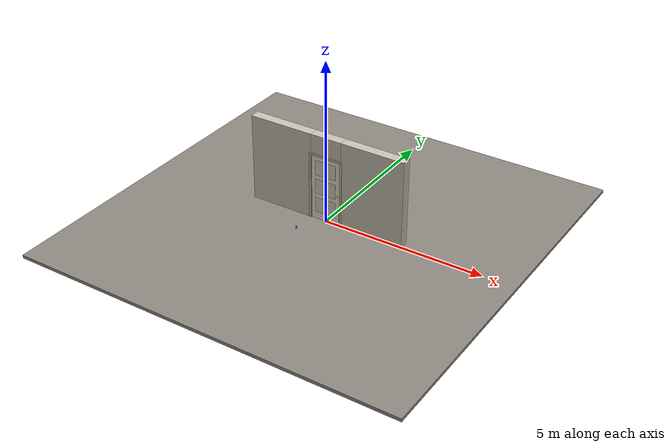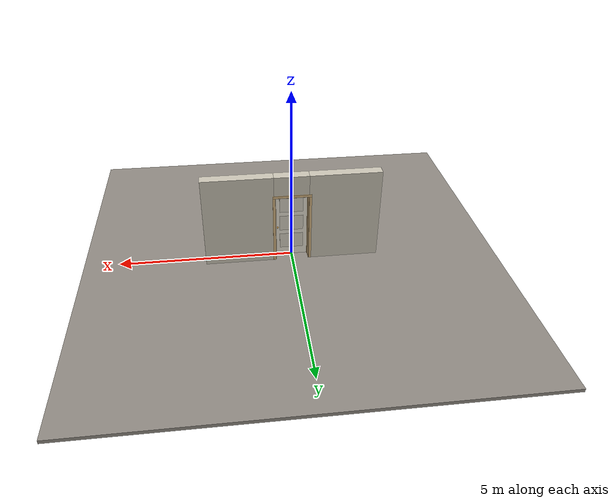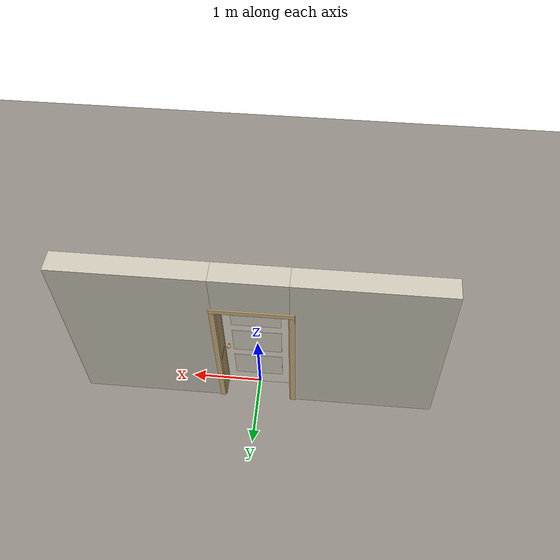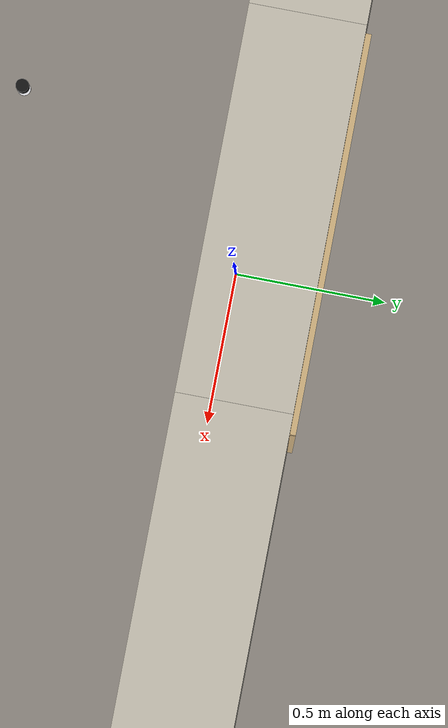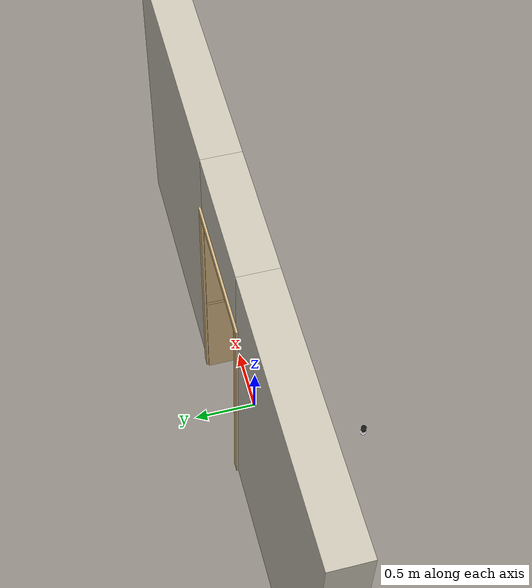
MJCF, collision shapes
<?xml version="1.0" ?>
<mujoco model="db0616_swing_single_full">
  <compiler angle="radian" meshdir="../../hardware" texturedir="../../textures" autolimits="true" inertiafromgeom="false"/>
  <option timestep="0.002" integrator="implicitfast" cone="elliptic" impratio="10" noslip_iterations="3">
    <flag multiccd="enable"/>
  </option>
  <size memory="16M"/>
  <default>
    <geom condim="4" solref="0.005 1" solimp="0.95 0.99 0.001"/>
    <joint solreflimit="0.005 1" solimplimit="0.95 0.99 0.001"/>
    <tendon solreflimit="0.005 1"/>
    <equality solref="0.002 1"/>
  </default>
  <visual>
    <headlight ambient="0.4 0.4 0.4" diffuse="0.7 0.7 0.7" specular="0.2 0.2 0.2"/>
    <quality shadowsize="4096"/>
    <map znear="0.01" zfar="60"/>
  </visual>
  <asset>
    <mesh name="coat_hook_d622d37ad0" file="coat_hook_d622d37ad0.obj"/>
    <mesh name="hinge_96510cf394" file="hinge_96510cf394.obj"/>
    <mesh name="hinge_jamb_7fd4ca52b2" file="hinge_jamb_7fd4ca52b2.obj"/>
    <mesh name="knob_d1888f6f03" file="knob_d1888f6f03.obj"/>
    <material name="mat_floor" rgba="0.55 0.53 0.5 1" specular="0.2" shininess="0.15" reflectance="0"/>
    <material name="mat_wall" rgba="0.78 0.76 0.7 1" specular="0.2" shininess="0.1" reflectance="0"/>
    <material name="mat_leaf" rgba="0.9 0.88 0.82 1" specular="0.2" shininess="0.4" reflectance="0"/>
    <material name="mat_leaf_panel" rgba="0.828 0.81 0.754 1" specular="0.2" shininess="0.4" reflectance="0"/>
    <material name="mat_hinge" rgba="0.65 0.66 0.68 1" specular="0.74" shininess="0.5" reflectance="0.36"/>
    <material name="mat_op_brass" rgba="0.85 0.66 0.3 1" specular="0.8" shininess="0.75" reflectance="0.4"/>
    <material name="mat_trim" rgba="0.85 0.66 0.3 1" specular="0.8" shininess="0.75" reflectance="0.4"/>
    <material name="mat_bolt" rgba="0.85 0.66 0.3 1" specular="0.8" shininess="0.75" reflectance="0.4"/>
    <material name="mat_frame" rgba="0.82 0.7 0.5 1" specular="0.2" shininess="0.45" reflectance="0"/>
    <material name="mat_hook" rgba="0.9 0.9 0.92 1" specular="0.8" shininess="0.9" reflectance="0.4"/>
    <material name="mat_bumper_stop" rgba="0.08 0.08 0.08 1" specular="0.2" shininess="0.1" reflectance="0"/>
    <material name="mat_stop_base" rgba="0.9 0.9 0.92 1" specular="0.8" shininess="0.9" reflectance="0.4"/>
    <texture name="skybox" type="skybox" builtin="gradient" rgb1="0.6 0.7 0.85" rgb2="0.9 0.92 0.95" width="256" height="256"/>
  </asset>
  <worldbody>
    <light name="sun" pos="1.5 -2.5 4" dir="-0.3 0.5 -0.8" directional="true" diffuse="0.8 0.8 0.8" specular="0.3 0.3 0.3" castshadow="true"/>
    <light name="fill" pos="-1.5 2.5 3" dir="0.3 -0.5 -0.7" directional="true" diffuse="0.35 0.35 0.4" castshadow="false"/>
    <camera name="robot_view" pos="0 -2.416687 1.734312" xyaxes="1 0 0 0 0.26963 0.962964" fovy="52"/>
    <camera name="far_view" pos="0 2.667687 1.734312" xyaxes="-1 0 0 0 -0.26963 0.962964" fovy="52"/>
    <camera name="iso" pos="1.932062 -2.009937 2.141063" xyaxes="0.741536 0.670913 0 -0.242917 0.268487 0.932151" fovy="46"/>
    <camera name="detail_handle" pos="0.5765 -0.864 1.245" xyaxes="0.97561 0.219512 0 -0.070934 0.315262 0.94635" fovy="38"/>
    <geom name="floor" type="box" size="6 6 0.05" pos="0 0 -0.05" material="mat_floor" group="0" contype="1" conaffinity="1" friction="0.8 0.005 0.0001" density="2400"/>
    <geom name="wall_left" type="box" size="1.01025 0.15 1.35" pos="-1.48975 0.1255 1.35" material="mat_wall" group="0" contype="1" conaffinity="1" friction="0.6 0.005 0.0001" density="800"/>
    <geom name="wall_right" type="box" size="0.99525 0.15 1.35" pos="1.50475 0.1255 1.35" material="mat_wall" group="0" contype="1" conaffinity="1" friction="0.6 0.005 0.0001" density="800"/>
    <geom name="wall_header" type="box" size="0.4945 0.15 0.303" pos="0.015 0.1255 2.397" material="mat_wall" group="0" contype="1" conaffinity="1" friction="0.6 0.005 0.0001" density="800"/>
    <geom name="hinge_0_jamb" type="mesh" mesh="hinge_jamb_7fd4ca52b2" pos="-0.4575 -0.0245 0.259" material="mat_hinge" group="1" contype="0" conaffinity="0" density="7850"/>
    <geom name="hinge_1_jamb" type="mesh" mesh="hinge_jamb_7fd4ca52b2" pos="-0.4575 -0.0245 1.025" material="mat_hinge" group="1" contype="0" conaffinity="0" density="7850"/>
    <geom name="hinge_2_jamb" type="mesh" mesh="hinge_jamb_7fd4ca52b2" pos="-0.4575 -0.0245 1.861" material="mat_hinge" group="1" contype="0" conaffinity="0" density="7850"/>
    <geom name="jamb_hinge" type="box" size="0.0095 0.15 1.0225" pos="-0.47 0.1255 1.0225" material="mat_frame" group="0" contype="1" conaffinity="1" friction="0.6 0.005 0.0001" density="400"/>
    <geom name="strike_965_wall_n" type="box" size="0.0245 0.133825 0.0167" pos="0.485 0.141675 0.965" material="mat_frame" group="0" contype="1" conaffinity="1" friction="0.6 0.005 0.0001" density="400"/>
    <geom name="strike_965_wall_p" type="box" size="0.0245 0.008 0.0167" pos="0.485 -0.01585 0.965" material="mat_frame" group="0" contype="1" conaffinity="1" friction="0.6 0.005 0.0001" density="400"/>
    <geom name="strike_965_ramp" type="box" size="0.0245 0.01649 0.0167" pos="0.489636 -0.028673 0.965" quat="0.977148 0 0 0.212558" material="mat_frame" group="0" contype="1" conaffinity="1" friction="0.12 0.005 0.0001" density="400"/>
    <geom name="strike_965_back" type="box" size="0.01615 0.00785 0.0167" pos="0.49335 0 0.965" material="mat_frame" group="0" contype="1" conaffinity="1" friction="0.6 0.005 0.0001" density="400"/>
    <geom name="jamb_strike_0" type="box" size="0.0245 0.15 0.47415" pos="0.485 0.1255 0.47415" material="mat_frame" group="0" contype="1" conaffinity="1" friction="0.6 0.005 0.0001" density="400"/>
    <geom name="jamb_strike_1" type="box" size="0.0245 0.15 0.53165" pos="0.485 0.1255 1.51335" material="mat_frame" group="0" contype="1" conaffinity="1" friction="0.6 0.005 0.0001" density="400"/>
    <geom name="jamb_head" type="box" size="0.4945 0.15 0.0095" pos="0.015 0.1255 2.0545" material="mat_frame" group="0" contype="1" conaffinity="1" friction="0.6 0.005 0.0001" density="400"/>
    <geom name="head_stud" type="box" size="0.4945 0.15 0.015" pos="0.015 0.1255 2.079" material="mat_wall" group="0" contype="1" conaffinity="1" friction="0.6 0.005 0.0001" density="500"/>
    <geom name="stop_hinge" type="box" size="0.0055 0.016 1.0225" pos="-0.455 0.034 1.0225" material="mat_frame" group="0" contype="1" conaffinity="1" friction="0.6 0.005 0.0001" density="400"/>
    <geom name="stop_strike" type="box" size="0.0055 0.016 1.0225" pos="0.455 0.034 1.0225" material="mat_frame" group="0" contype="1" conaffinity="1" friction="0.6 0.005 0.0001" density="400"/>
    <geom name="stop_head" type="box" size="0.4605 0.016 0.0055" pos="0 0.034 2.0395" material="mat_frame" group="0" contype="1" conaffinity="1" friction="0.6 0.005 0.0001" density="400"/>
    <geom name="casing_l_n" type="box" size="0.035 0.008 1.032" pos="-0.5095 -0.0325 1.0225" material="mat_frame" group="2" contype="0" conaffinity="0" density="400"/>
    <geom name="casing_r_n" type="box" size="0.035 0.008 1.032" pos="0.5095 -0.0325 1.0225" material="mat_frame" group="2" contype="0" conaffinity="0" density="400"/>
    <geom name="casing_h_n" type="box" size="0.5445 0.008 0.035" pos="0 -0.0325 2.094" material="mat_frame" group="2" contype="0" conaffinity="0" density="400"/>
    <geom name="casing_l_p" type="box" size="0.035 0.008 1.032" pos="-0.5095 0.2835 1.0225" material="mat_frame" group="2" contype="0" conaffinity="0" density="400"/>
    <geom name="casing_r_p" type="box" size="0.035 0.008 1.032" pos="0.5095 0.2835 1.0225" material="mat_frame" group="2" contype="0" conaffinity="0" density="400"/>
    <geom name="casing_h_p" type="box" size="0.5445 0.008 0.035" pos="0 0.2835 2.094" material="mat_frame" group="2" contype="0" conaffinity="0" density="400"/>
    <geom name="door_stop_base" type="cylinder" size="0.022 0.003" pos="-0.4735 -0.8014 0.003" material="mat_stop_base" group="0" contype="1" conaffinity="1" friction="0.6 0.005 0.0001" density="7850"/>
    <geom name="door_stop_post" type="cylinder" size="0.012 0.0245" pos="-0.4735 -0.8014 0.0305" material="mat_stop_base" group="0" contype="1" conaffinity="1" friction="0.6 0.005 0.0001" density="7850"/>
    <geom name="door_stop_bumper" type="cylinder" size="0.022 0.02" pos="-0.4735 -0.8014 0.075" material="mat_bumper_stop" group="0" contype="1" conaffinity="1" friction="0.6 0.005 0.0001" density="1100"/>
    <site name="approach_point" pos="0 -1.5 0" quat="1 0 0 0" size="0.05" rgba="0.2 0.9 0.2 0.5" group="4"/>
    <site name="goal_point" pos="0 1.5 0" quat="1 0 0 0" size="0.05" rgba="0.2 0.9 0.2 0.5" group="4"/>
    <site name="door_plane_center" pos="0 0 1.0225" quat="1 0 0 0" size="0.02" rgba="0.2 0.9 0.2 0.5" group="4"/>
    <body name="leaf" pos="-0.4605 0 0">
      <inertial pos="0.448616 -0.000179 1.02837" mass="15.752832" quat="-0.499563 0.50091 -0.499265 -0.50026" diaginertia="1.149995616 5.456945173 6.603187983"/>
      <joint name="leaf_hinge" type="hinge" axis="0 0 -1" pos="0.003 -0.0245 0" limited="true" range="0 1.570796" damping="2.25611" frictionloss="0.215431" stiffness="6.6" springref="-0.409091" armature="0.02"/>
      <geom name="leaf_slab" type="box" size="0.457 0.0175 1.016" pos="0.46 0 1.025" material="mat_leaf" group="0" contype="1" conaffinity="1" friction="0.35 0.005 0.0001" density="1"/>
      <geom name="leaf_panel_0_n" type="box" size="0.33646 0.003 0.23448" pos="0.46 -0.0205 0.487" material="mat_leaf_panel" group="1" contype="0" conaffinity="0" density="1"/>
      <geom name="leaf_panel_0_p" type="box" size="0.33646 0.003 0.23448" pos="0.46 0.0205 0.487" material="mat_leaf_panel" group="1" contype="0" conaffinity="0" density="1"/>
      <geom name="leaf_panel_1_n" type="box" size="0.33646 0.003 0.23448" pos="0.46 -0.0205 1.08596" material="mat_leaf_panel" group="1" contype="0" conaffinity="0" density="1"/>
      <geom name="leaf_panel_1_p" type="box" size="0.33646 0.003 0.23448" pos="0.46 0.0205 1.08596" material="mat_leaf_panel" group="1" contype="0" conaffinity="0" density="1"/>
      <geom name="leaf_panel_2_n" type="box" size="0.33646 0.003 0.23448" pos="0.46 -0.0205 1.68492" material="mat_leaf_panel" group="1" contype="0" conaffinity="0" density="1"/>
      <geom name="leaf_panel_2_p" type="box" size="0.33646 0.003 0.23448" pos="0.46 0.0205 1.68492" material="mat_leaf_panel" group="1" contype="0" conaffinity="0" density="1"/>
      <geom name="hinge_0" type="mesh" mesh="hinge_96510cf394" pos="0.003 -0.0245 0.259" material="mat_hinge" group="1" contype="0" conaffinity="0" density="7850"/>
      <geom name="hinge_1" type="mesh" mesh="hinge_96510cf394" pos="0.003 -0.0245 1.025" material="mat_hinge" group="1" contype="0" conaffinity="0" density="7850"/>
      <geom name="hinge_2" type="mesh" mesh="hinge_96510cf394" pos="0.003 -0.0245 1.861" material="mat_hinge" group="1" contype="0" conaffinity="0" density="7850"/>
      <geom name="leaf_latch_bolt_faceplate" type="box" size="0.0006 0.01235 0.0267" pos="0.9164 0 0.965" material="mat_bolt" group="1" contype="0" conaffinity="0" density="8500"/>
      <geom name="coat_hook" type="mesh" mesh="coat_hook_d622d37ad0" pos="0.46 0.0175 1.691" quat="-0.707107 0.707107 0 0" material="mat_hook" group="2" contype="0" conaffinity="0" density="7000"/>
      <site name="leaf_edge_mid" pos="0.917 0 1.016" quat="1 0 0 0" size="0.02" rgba="0.2 0.9 0.2 0.5" group="4"/>
      <body name="leaf_handle" pos="0.857 0 0.965">
        <inertial pos="0 0.000435 0" mass="1.149538" quat="-0.5 0.5 -0.5 0.5" diaginertia="0.00031244 0.003750924 0.003750924"/>
        <joint name="leaf_handle_hinge" type="hinge" axis="0 -1 0" limited="true" range="0 0.87" damping="0.143614" frictionloss="0.038" stiffness="0.5" springref="-0.5" armature="0.01"/>
        <geom name="leaf_handle_spindle" type="cylinder" size="0.006 0.0255" pos="0 0 0" quat="0.707107 -0.707107 0 0" material="mat_op_brass" group="1" contype="0" conaffinity="0" density="7850"/>
        <geom name="leaf_handle_knob_n" type="mesh" mesh="knob_d1888f6f03" pos="0 -0.0175 0" quat="0.707107 0.707107 0 0" material="mat_op_brass" group="1" contype="0" conaffinity="0" density="3000"/>
        <geom name="leaf_handle_knob_col_n" type="sphere" size="0.0243" pos="0 -0.064 0" material="mat_op_brass" group="0" contype="1" conaffinity="1" friction="0.9 0.01 0.0001" density="3000"/>
        <geom name="leaf_handle_knob_neck_n" type="cylinder" size="0.011 0.012" pos="0 -0.0295 0" quat="0.707107 -0.707107 0 0" material="mat_op_brass" group="3" contype="1" conaffinity="1" rgba="0.8 0.3 0.3 0.25" friction="0.6 0.005 0.0001" density="3000"/>
        <geom name="leaf_handle_knob_p" type="mesh" mesh="knob_d1888f6f03" pos="0 0.0175 0" quat="-0.707107 0.707107 0 0" material="mat_op_brass" group="1" contype="0" conaffinity="0" density="3000"/>
        <geom name="leaf_handle_knob_col_p" type="sphere" size="0.0243" pos="0 0.064 0" material="mat_op_brass" group="0" contype="1" conaffinity="1" friction="0.9 0.01 0.0001" density="3000"/>
        <geom name="leaf_handle_knob_neck_p" type="cylinder" size="0.011 0.012" pos="0 0.0295 0" quat="0.707107 -0.707107 0 0" material="mat_op_brass" group="3" contype="1" conaffinity="1" rgba="0.8 0.3 0.3 0.25" friction="0.6 0.005 0.0001" density="3000"/>
        <geom name="leaf_handle_turn_button_p" type="cylinder" size="0.005 0.005" pos="0 0.0896 0" quat="0.707107 -0.707107 0 0" material="mat_trim" group="1" contype="0" conaffinity="0" density="7100"/>
        <site name="leaf_handle_grip_n" pos="0 -0.064 0" quat="1 0 0 0" size="0.012" rgba="0.2 0.9 0.2 0.5" group="4"/>
        <site name="leaf_handle_grip_p" pos="0 0.064 0" quat="1 0 0 0" size="0.012" rgba="0.2 0.9 0.2 0.5" group="4"/>
      </body>
      <body name="leaf_latch_bolt" pos="0.917 0 0.965">
        <inertial pos="-0.00865 0 0" mass="0.041419" quat="0.92388 -0.382683 0 0" diaginertia="0.000000798 0.000005598 0.000005598"/>
        <joint name="leaf_latch_bolt_slide" type="slide" axis="-1 0 0" limited="true" range="0 0.0127" damping="2" frictionloss="0.3" stiffness="300" springref="-0.008333" armature="0.1"/>
        <geom name="leaf_latch_bolt_capsule" type="capsule" size="0.00635 0.015" pos="-0.00865 0 0" quat="0.707107 0 0.707107 0" material="mat_bolt" group="0" contype="1" conaffinity="1" friction="0.2 0.005 0.0001" density="8500"/>
      </body>
    </body>
  </worldbody>
  <tendon>
    <fixed name="leaf_latch_bolt_coupling" limited="true" range="0 10">
      <joint joint="leaf_latch_bolt_slide" coef="1"/>
      <joint joint="leaf_handle_hinge" coef="-0.015679"/>
    </fixed>
  </tendon>
  <sensor>
    <jointpos name="leaf_hinge_pos" joint="leaf_hinge"/>
    <jointvel name="leaf_hinge_vel" joint="leaf_hinge"/>
    <jointpos name="leaf_handle_hinge_pos" joint="leaf_handle_hinge"/>
    <jointvel name="leaf_handle_hinge_vel" joint="leaf_handle_hinge"/>
    <jointpos name="leaf_latch_bolt_slide_pos" joint="leaf_latch_bolt_slide"/>
    <jointvel name="leaf_latch_bolt_slide_vel" joint="leaf_latch_bolt_slide"/>
  </sensor>
</mujoco>
